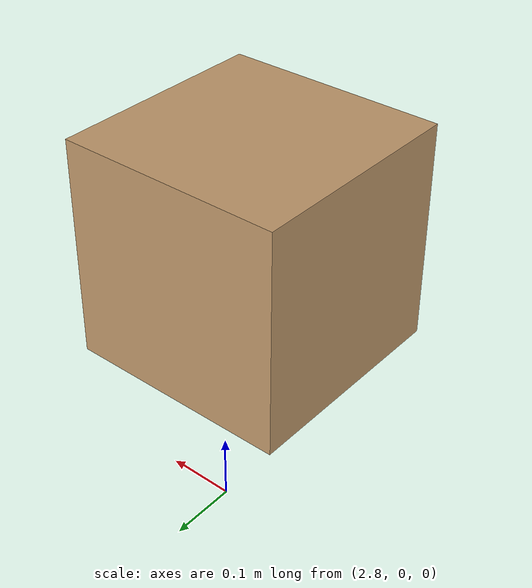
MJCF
<mujoco model="cardboard_box">
  mpiler angle="radian"/>
  <option timestep='0.001'/>

  <asset>
    <material name="cardboard"
          rgba="0.7569 0.6039 0.4235 1.0"
          reflectance="0.1"/>
  </asset>

  <worldbody>
    <body name="cube" pos="3.0 -0.3 0.2">
      <freejoint/>
      <geom name="cube_geom"
            type="box"
            size="0.2 0.2 0.2"
            material="cardboard"
            friction="1.0 0.005 0.0001"
            mass="1.0"
            contype="1" conaffinity="1"/>
    </body>
  </worldbody>
</mujoco>
